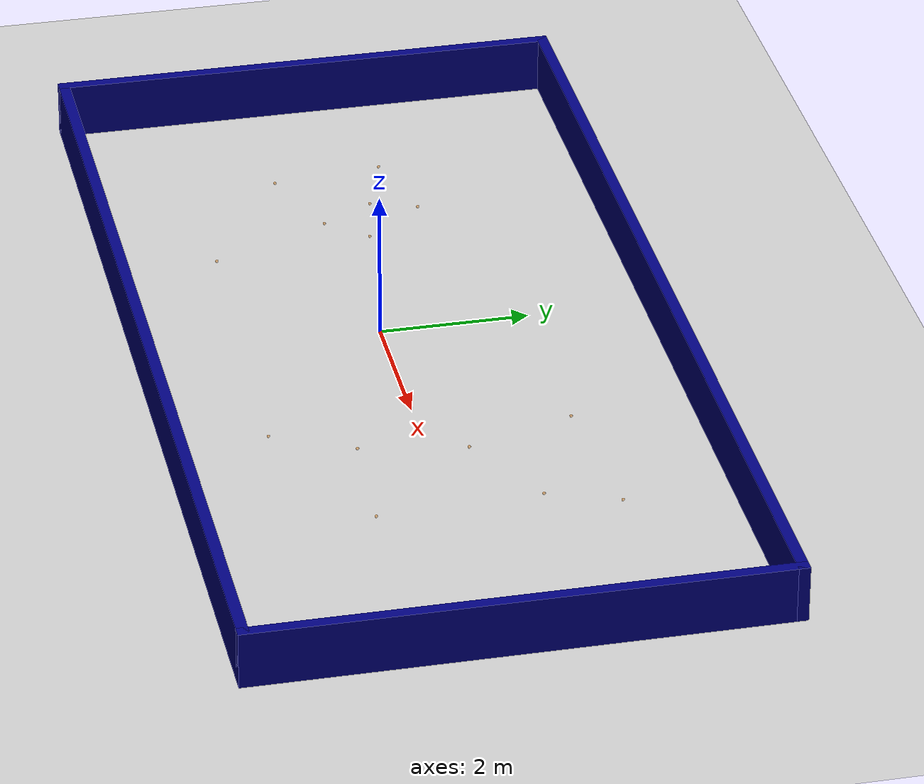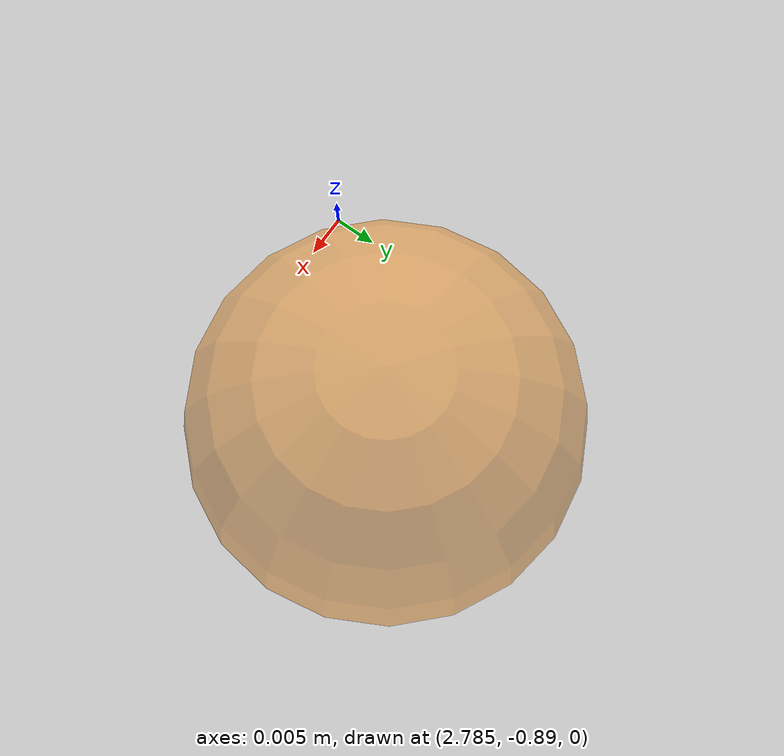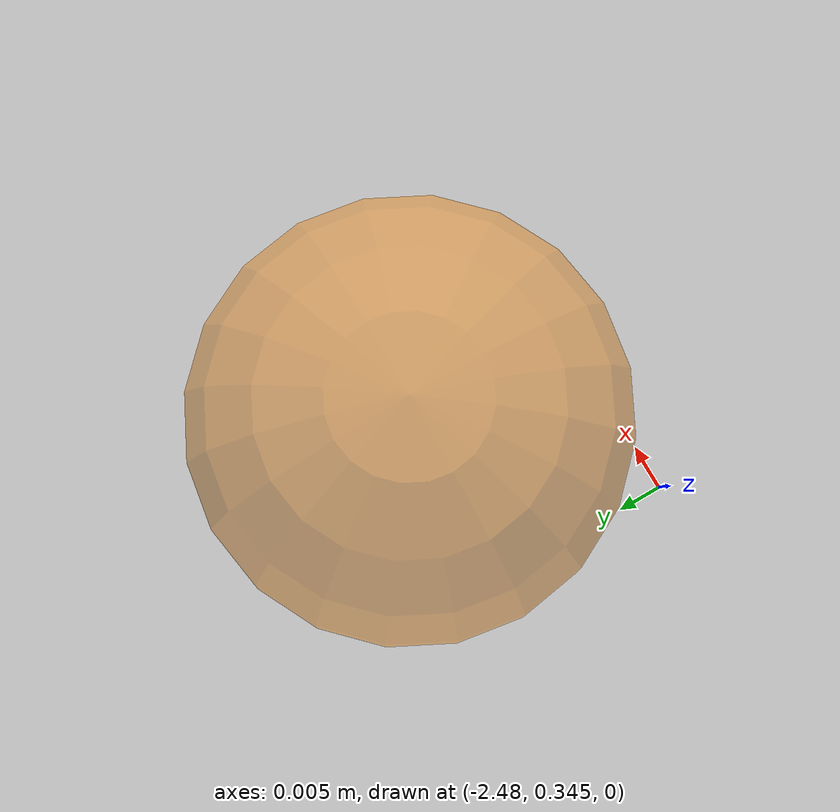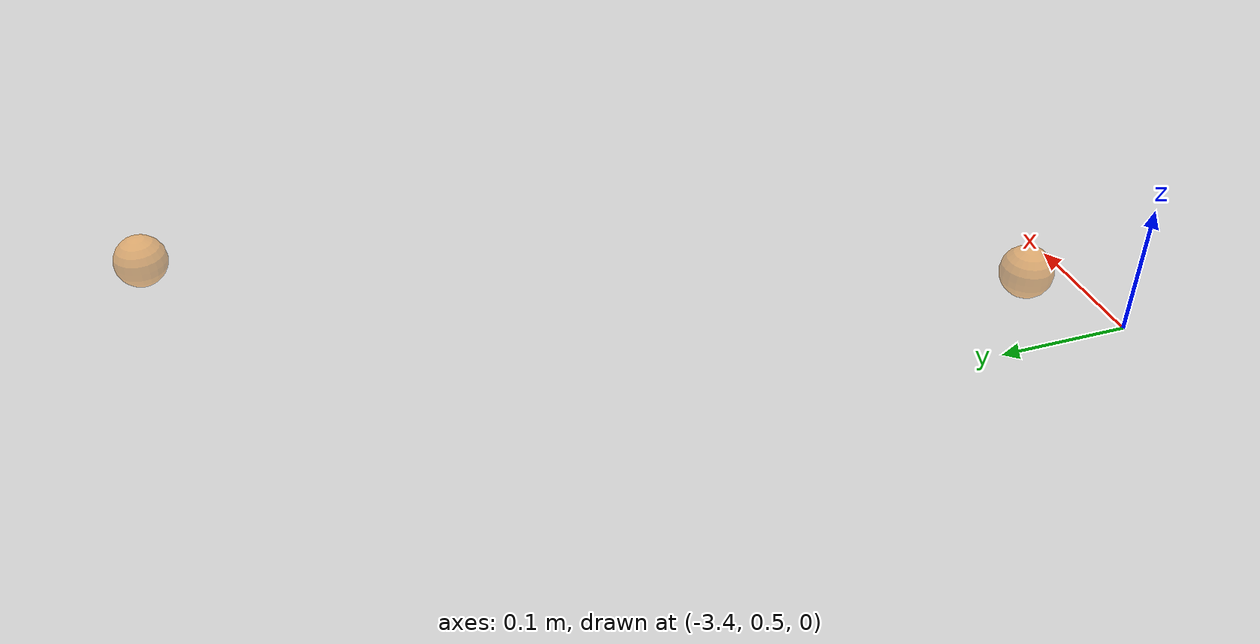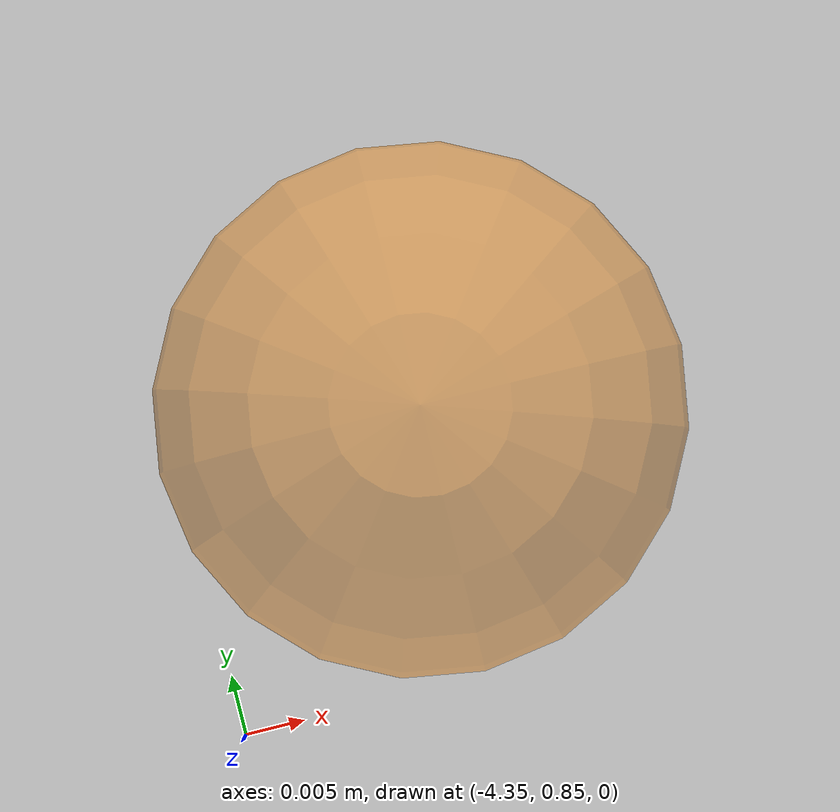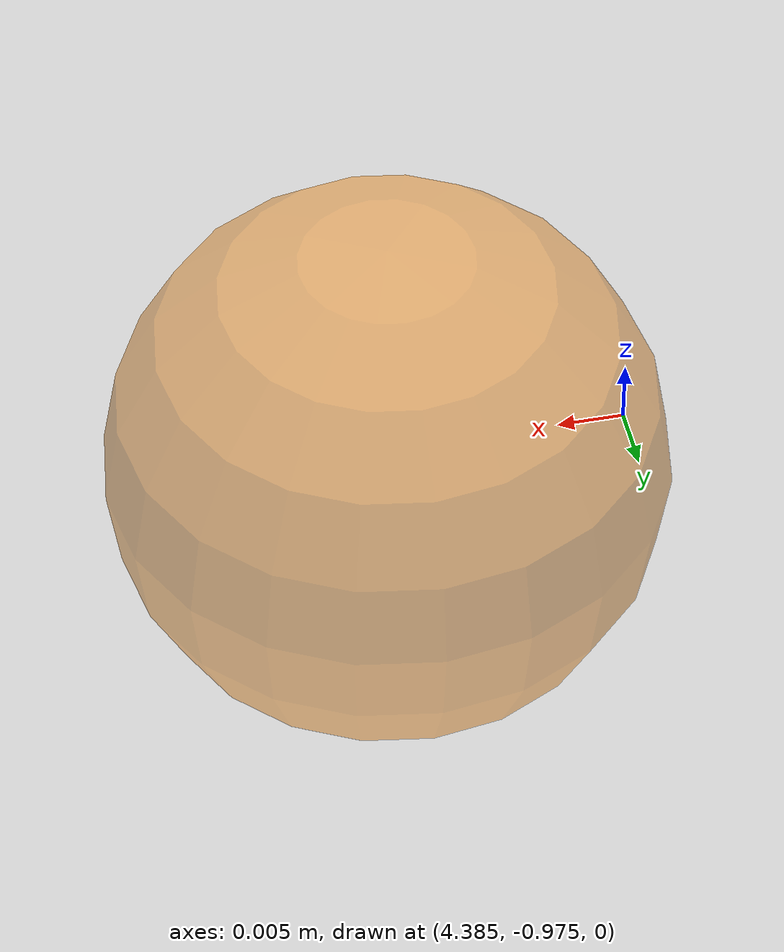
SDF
<sdf version="1.6">
 <world name="default">
  <light name="sun" type="directional">
   <pose>0 0 10 0 -0 0</pose>
   <diffuse>0.8 0.8 0.8 1</diffuse>
   <specular>0.1 0.1 0.1 1</specular>
   <attenuation>
    <range>1000</range>
    <constant>0.9</constant>
    <linear>0.01</linear>
    <quadratic>0.001</quadratic>
   </attenuation>
   <direction>-0.5 0.5 -1</direction>
  </light>
  <model name="ground_plane">
   <static>1</static>
   <link name="link">
    <collision name="collision">
     <geometry><plane><normal>0 0 1</normal><size>100 100</size></plane></geometry>
     <surface><friction><ode><mu>100</mu><mu2>50</mu2></ode></friction></surface>
    </collision>
    <visual name="visual">
     <cast_shadows>0</cast_shadows>
     <geometry><plane><normal>0 0 1</normal><size>100 100</size></plane></geometry>
     <material>
      <script><uri>file://media/materials/scripts/gazebo.material</uri><name>Gazebo/Grey</name></script>
     </material>
    </visual>
   </link>
  </model>
  <gravity>0 0 -9.8</gravity>
  <magnetic_field>6e-06 2.3e-05 -4.2e-05</magnetic_field>
  <atmosphere type="adiabatic"/>
  <physics name="default_physics" default="0" type="ode">
   <max_step_size>0.001</max_step_size>
   <real_time_factor>1</real_time_factor>
   <real_time_update_rate>1000</real_time_update_rate>
  </physics>
  <scene><ambient>0.4 0.4 0.4 1</ambient><background>0.7 0.7 0.7 1</background><shadows>1</shadows></scene>
  <spherical_coordinates>
   <surface_model>EARTH_WGS84</surface_model>
   <latitude_deg>0</latitude_deg>
   <longitude_deg>0</longitude_deg>
   <elevation>0</elevation>
   <heading_deg>0</heading_deg>
  </spherical_coordinates>
  <model name="table_tennis_room_2">
   <pose>0.71764 0.20188 0 0 -0 0</pose>
   <link name="Wall_3">
    <collision name="Wall_3_Collision">
     <geometry><box><size>14 0.15 0.76</size></box></geometry>
     <pose>0 0 0.38 0 -0 0</pose>
    </collision>
    <visual name="Wall_3_Visual">
     <pose>0 0 0.38 0 -0 0</pose>
     <geometry><box><size>14 0.15 0.76</size></box></geometry>
     <material>
      <script><uri>file://media/materials/scripts/gazebo.material</uri><name>Gazebo/Grey</name></script>
      <ambient>0 0 0.498039 1</ambient>
     </material>
    </visual>
    <pose>0 -3.425 0 0 -0 0</pose>
   </link>
   <link name="Wall_4">
    <collision name="Wall_4_Collision">
     <geometry><box><size>7 0.15 0.76</size></box></geometry>
     <pose>0 0 0.38 0 -0 0</pose>
    </collision>
    <visual name="Wall_4_Visual">
     <pose>0 0 0.38 0 -0 0</pose>
     <geometry><box><size>7 0.15 0.76</size></box></geometry>
     <material>
      <script><uri>file://media/materials/scripts/gazebo.material</uri><name>Gazebo/Grey</name></script>
      <ambient>0 0 0.498039 1</ambient>
     </material>
    </visual>
    <pose>6.925 0 0 0 -0 1.5708</pose>
   </link>
   <link name="Wall_5">
    <collision name="Wall_5_Collision">
     <geometry><box><size>14 0.15 0.76</size></box></geometry>
     <pose>0 0 0.38 0 -0 0</pose>
    </collision>
    <visual name="Wall_5_Visual">
     <pose>0 0 0.38 0 -0 0</pose>
     <geometry><box><size>14 0.15 0.76</size></box></geometry>
     <material>
      <script><uri>file://media/materials/scripts/gazebo.material</uri><name>Gazebo/Grey</name></script>
      <ambient>0 0 0.498039 1</ambient>
     </material>
    </visual>
    <pose>0 3.425 0 0 -0 3.14159</pose>
   </link>
   <link name="Wall_6">
    <collision name="Wall_6_Collision">
     <geometry><box><size>7 0.15 0.76</size></box></geometry>
     <pose>0 0 0.38 0 -0 0</pose>
    </collision>
    <visual name="Wall_6_Visual">
     <pose>0 0 0.38 0 -0 0</pose>
     <geometry><box><size>7 0.15 0.76</size></box></geometry>
     <material>
      <script><uri>file://media/materials/scripts/gazebo.material</uri><name>Gazebo/Grey</name></script>
      <ambient>0 0 0.498039 1</ambient>
     </material>
    </visual>
    <pose>-6.925 0 0 0 0 -1.5708</pose>
   </link>
   <static>1</static>
  </model>
  <model name="table_tennis">
   <link name="link">
    <inertial>
     <mass>0.0027</mass>
     <inertia><ixx>0.1</ixx><ixy>0</ixy><ixz>0</ixz><iyy>0.1</iyy><iyz>0</iyz><izz>0.1</izz></inertia>
    </inertial>
    <visual name="visual">
     <geometry><sphere><radius>0.02</radius></sphere></geometry>
     <material>
      <script>
       <name>Gazebo/OrangeTransparent</name>
       <uri>file://media/materials/scripts/gazebo.material</uri>
      </script>
      <ambient>1 0.44 0 1</ambient>
      <diffuse>1 0.44 0 1</diffuse>
      <specular>0 0 0 1</specular>
      <emissive>0 0 0 1</emissive>
      <shader type="vertex"><normal_map>__default__</normal_map></shader>
     </material>
     <transparency>0.22</transparency>
    </visual>
    <collision name="collision">
     <geometry><sphere><radius>0.02</radius></sphere></geometry>
     <surface>
      <friction>
       <ode><mu>1</mu><mu2>1</mu2><fdir1>0 0 0</fdir1><slip1>0</slip1><slip2>0</slip2></ode>
       <torsional>
        <coefficient>1</coefficient>
        <patch_radius>0</patch_radius>
        <surface_radius>0</surface_radius>
        <use_patch_radius>1</use_patch_radius>
        <ode><slip>0</slip></ode>
       </torsional>
      </friction>
      <bounce><restitution_coefficient>0</restitution_coefficient><threshold>1e+06</threshold></bounce>
      <contact>
       <collide_without_contact>0</collide_without_contact>
       <collide_without_contact_bitmask>1</collide_without_contact_bitmask>
       <collide_bitmask>1</collide_bitmask>
       <ode>
        <soft_cfm>0</soft_cfm>
        <soft_erp>0.2</soft_erp>
        <kp>1e+13</kp>
        <kd>1</kd>
        <max_vel>0.01</max_vel>
        <min_depth>0</min_depth>
       </ode>
       <bullet>
        <split_impulse>1</split_impulse>
        <split_impulse_penetration_threshold>-0.01</split_impulse_penetration_threshold>
        <soft_cfm>0</soft_cfm>
        <soft_erp>0.2</soft_erp>
        <kp>1e+13</kp>
        <kd>1</kd>
       </bullet>
      </contact>
     </surface>
    </collision>
   </link>
   <static>0</static>
   <pose>-2.95954 -0.163296 0.004 0 -0 0</pose>
  </model>
  <model name="table_tennis_0">
   <link name="link">
    <inertial>
     <mass>0.0027</mass>
     <inertia><ixx>0.1</ixx><ixy>0</ixy><ixz>0</ixz><iyy>0.1</iyy><iyz>0</iyz><izz>0.1</izz></inertia>
    </inertial>
    <visual name="visual">
     <geometry><sphere><radius>0.02</radius></sphere></geometry>
     <material>
      <script>
       <name>Gazebo/OrangeTransparent</name>
       <uri>file://media/materials/scripts/gazebo.material</uri>
      </script>
      <ambient>1 0.44 0 1</ambient>
      <diffuse>1 0.44 0 1</diffuse>
      <specular>0 0 0 1</specular>
      <emissive>0 0 0 1</emissive>
      <shader type="vertex"><normal_map>__default__</normal_map></shader>
     </material>
     <transparency>0.22</transparency>
    </visual>
    <collision name="collision">
     <geometry><sphere><radius>0.02</radius></sphere></geometry>
     <surface>
      <friction>
       <ode><mu>1</mu><mu2>1</mu2><fdir1>0 0 0</fdir1><slip1>0</slip1><slip2>0</slip2></ode>
       <torsional>
        <coefficient>1</coefficient>
        <patch_radius>0</patch_radius>
        <surface_radius>0</surface_radius>
        <use_patch_radius>1</use_patch_radius>
        <ode><slip>0</slip></ode>
       </torsional>
      </friction>
      <bounce><restitution_coefficient>0</restitution_coefficient><threshold>1e+06</threshold></bounce>
      <contact>
       <collide_without_contact>0</collide_without_contact>
       <collide_without_contact_bitmask>1</collide_without_contact_bitmask>
       <collide_bitmask>1</collide_bitmask>
       <ode>
        <soft_cfm>0</soft_cfm>
        <soft_erp>0.2</soft_erp>
        <kp>1e+13</kp>
        <kd>1</kd>
        <max_vel>0.01</max_vel>
        <min_depth>0</min_depth>
       </ode>
       <bullet>
        <split_impulse>1</split_impulse>
        <split_impulse_penetration_threshold>-0.01</split_impulse_penetration_threshold>
        <soft_cfm>0</soft_cfm>
        <soft_erp>0.2</soft_erp>
        <kp>1e+13</kp>
        <kd>1</kd>
       </bullet>
      </contact>
     </surface>
    </collision>
   </link>
   <static>0</static>
   <pose>-4.32968 0.872251 0.02 0 -0 0</pose>
  </model>
  <model name="table_tennis_1">
   <link name="link">
    <inertial>
     <mass>0.0027</mass>
     <inertia><ixx>0.1</ixx><ixy>0</ixy><ixz>0</ixz><iyy>0.1</iyy><iyz>0</iyz><izz>0.1</izz></inertia>
    </inertial>
    <visual name="visual">
     <geometry><sphere><radius>0.02</radius></sphere></geometry>
     <material>
      <script>
       <name>Gazebo/OrangeTransparent</name>
       <uri>file://media/materials/scripts/gazebo.material</uri>
      </script>
      <ambient>1 0.44 0 1</ambient>
      <diffuse>1 0.44 0 1</diffuse>
      <specular>0 0 0 1</specular>
      <emissive>0 0 0 1</emissive>
      <shader type="vertex"><normal_map>__default__</normal_map></shader>
     </material>
     <transparency>0.22</transparency>
    </visual>
    <collision name="collision">
     <geometry><sphere><radius>0.02</radius></sphere></geometry>
     <surface>
      <friction>
       <ode><mu>1</mu><mu2>1</mu2><fdir1>0 0 0</fdir1><slip1>0</slip1><slip2>0</slip2></ode>
       <torsional>
        <coefficient>1</coefficient>
        <patch_radius>0</patch_radius>
        <surface_radius>0</surface_radius>
        <use_patch_radius>1</use_patch_radius>
        <ode><slip>0</slip></ode>
       </torsional>
      </friction>
      <bounce><restitution_coefficient>0</restitution_coefficient><threshold>1e+06</threshold></bounce>
      <contact>
       <collide_without_contact>0</collide_without_contact>
       <collide_without_contact_bitmask>1</collide_without_contact_bitmask>
       <collide_bitmask>1</collide_bitmask>
       <ode>
        <soft_cfm>0</soft_cfm>
        <soft_erp>0.2</soft_erp>
        <kp>1e+13</kp>
        <kd>1</kd>
        <max_vel>0.01</max_vel>
        <min_depth>0</min_depth>
       </ode>
       <bullet>
        <split_impulse>1</split_impulse>
        <split_impulse_penetration_threshold>-0.01</split_impulse_penetration_threshold>
        <soft_cfm>0</soft_cfm>
        <soft_erp>0.2</soft_erp>
        <kp>1e+13</kp>
        <kd>1</kd>
       </bullet>
      </contact>
     </surface>
    </collision>
   </link>
   <static>0</static>
   <pose>-3.34024 0.546321 0.02 0 -0 0</pose>
  </model>
  <model name="table_tennis_2">
   <link name="link">
    <inertial>
     <mass>0.0027</mass>
     <inertia><ixx>0.1</ixx><ixy>0</ixy><ixz>0</ixz><iyy>0.1</iyy><iyz>0</iyz><izz>0.1</izz></inertia>
    </inertial>
    <visual name="visual">
     <geometry><sphere><radius>0.02</radius></sphere></geometry>
     <material>
      <script>
       <name>Gazebo/OrangeTransparent</name>
       <uri>file://media/materials/scripts/gazebo.material</uri>
      </script>
      <ambient>1 0.44 0 1</ambient>
      <diffuse>1 0.44 0 1</diffuse>
      <specular>0 0 0 1</specular>
      <emissive>0 0 0 1</emissive>
      <shader type="vertex"><normal_map>__default__</normal_map></shader>
     </material>
     <transparency>0.22</transparency>
    </visual>
    <collision name="collision">
     <geometry><sphere><radius>0.02</radius></sphere></geometry>
     <surface>
      <friction>
       <ode><mu>1</mu><mu2>1</mu2><fdir1>0 0 0</fdir1><slip1>0</slip1><slip2>0</slip2></ode>
       <torsional>
        <coefficient>1</coefficient>
        <patch_radius>0</patch_radius>
        <surface_radius>0</surface_radius>
        <use_patch_radius>1</use_patch_radius>
        <ode><slip>0</slip></ode>
       </torsional>
      </friction>
      <bounce><restitution_coefficient>0</restitution_coefficient><threshold>1e+06</threshold></bounce>
      <contact>
       <collide_without_contact>0</collide_without_contact>
       <collide_without_contact_bitmask>1</collide_without_contact_bitmask>
       <collide_bitmask>1</collide_bitmask>
       <ode>
        <soft_cfm>0</soft_cfm>
        <soft_erp>0.2</soft_erp>
        <kp>1e+13</kp>
        <kd>1</kd>
        <max_vel>0.01</max_vel>
        <min_depth>0</min_depth>
       </ode>
       <bullet>
        <split_impulse>1</split_impulse>
        <split_impulse_penetration_threshold>-0.01</split_impulse_penetration_threshold>
        <soft_cfm>0</soft_cfm>
        <soft_erp>0.2</soft_erp>
        <kp>1e+13</kp>
        <kd>1</kd>
       </bullet>
      </contact>
     </surface>
    </collision>
   </link>
   <static>0</static>
   <pose>-4.16554 -0.61973 0.02 -5e-06 -1e-06 0</pose>
  </model>
  <model name="table_tennis_3">
   <link name="link">
    <inertial>
     <mass>0.0027</mass>
     <inertia><ixx>0.1</ixx><ixy>0</ixy><ixz>0</ixz><iyy>0.1</iyy><iyz>0</iyz><izz>0.1</izz></inertia>
    </inertial>
    <visual name="visual">
     <geometry><sphere><radius>0.02</radius></sphere></geometry>
     <material>
      <script>
       <name>Gazebo/OrangeTransparent</name>
       <uri>file://media/materials/scripts/gazebo.material</uri>
      </script>
      <ambient>1 0.44 0 1</ambient>
      <diffuse>1 0.44 0 1</diffuse>
      <specular>0 0 0 1</specular>
      <emissive>0 0 0 1</emissive>
      <shader type="vertex"><normal_map>__default__</normal_map></shader>
     </material>
     <transparency>0.22</transparency>
    </visual>
    <collision name="collision">
     <geometry><sphere><radius>0.02</radius></sphere></geometry>
     <surface>
      <friction>
       <ode><mu>1</mu><mu2>1</mu2><fdir1>0 0 0</fdir1><slip1>0</slip1><slip2>0</slip2></ode>
       <torsional>
        <coefficient>1</coefficient>
        <patch_radius>0</patch_radius>
        <surface_radius>0</surface_radius>
        <use_patch_radius>1</use_patch_radius>
        <ode><slip>0</slip></ode>
       </torsional>
      </friction>
      <bounce><restitution_coefficient>0</restitution_coefficient><threshold>1e+06</threshold></bounce>
      <contact>
       <collide_without_contact>0</collide_without_contact>
       <collide_without_contact_bitmask>1</collide_without_contact_bitmask>
       <collide_bitmask>1</collide_bitmask>
       <ode>
        <soft_cfm>0</soft_cfm>
        <soft_erp>0.2</soft_erp>
        <kp>1e+13</kp>
        <kd>1</kd>
        <max_vel>0.01</max_vel>
        <min_depth>0</min_depth>
       </ode>
       <bullet>
        <split_impulse>1</split_impulse>
        <split_impulse_penetration_threshold>-0.01</split_impulse_penetration_threshold>
        <soft_cfm>0</soft_cfm>
        <soft_erp>0.2</soft_erp>
        <kp>1e+13</kp>
        <kd>1</kd>
       </bullet>
      </contact>
     </surface>
    </collision>
   </link>
   <static>0</static>
   <pose>-2.21963 -1.78059 0.02 0 -0 0</pose>
  </model>
  <model name="table_tennis_4">
   <link name="link">
    <inertial>
     <mass>0.0027</mass>
     <inertia><ixx>0.1</ixx><ixy>0</ixy><ixz>0</ixz><iyy>0.1</iyy><iyz>0</iyz><izz>0.1</izz></inertia>
    </inertial>
    <visual name="visual">
     <geometry><sphere><radius>0.02</radius></sphere></geometry>
     <material>
      <script>
       <name>Gazebo/OrangeTransparent</name>
       <uri>file://media/materials/scripts/gazebo.material</uri>
      </script>
      <ambient>1 0.44 0 1</ambient>
      <diffuse>1 0.44 0 1</diffuse>
      <specular>0 0 0 1</specular>
      <emissive>0 0 0 1</emissive>
      <shader type="vertex"><normal_map>__default__</normal_map></shader>
     </material>
     <transparency>0.22</transparency>
    </visual>
    <collision name="collision">
     <geometry><sphere><radius>0.02</radius></sphere></geometry>
     <surface>
      <friction>
       <ode><mu>1</mu><mu2>1</mu2><fdir1>0 0 0</fdir1><slip1>0</slip1><slip2>0</slip2></ode>
       <torsional>
        <coefficient>1</coefficient>
        <patch_radius>0</patch_radius>
        <surface_radius>0</surface_radius>
        <use_patch_radius>1</use_patch_radius>
        <ode><slip>0</slip></ode>
       </torsional>
      </friction>
      <bounce><restitution_coefficient>0</restitution_coefficient><threshold>1e+06</threshold></bounce>
      <contact>
       <collide_without_contact>0</collide_without_contact>
       <collide_without_contact_bitmask>1</collide_without_contact_bitmask>
       <collide_bitmask>1</collide_bitmask>
       <ode>
        <soft_cfm>0</soft_cfm>
        <soft_erp>0.2</soft_erp>
        <kp>1e+13</kp>
        <kd>1</kd>
        <max_vel>0.01</max_vel>
        <min_depth>0</min_depth>
       </ode>
       <bullet>
        <split_impulse>1</split_impulse>
        <split_impulse_penetration_threshold>-0.01</split_impulse_penetration_threshold>
        <soft_cfm>0</soft_cfm>
        <soft_erp>0.2</soft_erp>
        <kp>1e+13</kp>
        <kd>1</kd>
       </bullet>
      </contact>
     </surface>
    </collision>
   </link>
   <static>0</static>
   <pose>-3.12084 1.17118 0.02 0 -0 0</pose>
  </model>
  <model name="table_tennis_5">
   <link name="link">
    <inertial>
     <mass>0.0027</mass>
     <inertia><ixx>0.1</ixx><ixy>0</ixy><ixz>0</ixz><iyy>0.1</iyy><iyz>0</iyz><izz>0.1</izz></inertia>
    </inertial>
    <visual name="visual">
     <geometry><sphere><radius>0.02</radius></sphere></geometry>
     <material>
      <script>
       <name>Gazebo/OrangeTransparent</name>
       <uri>file://media/materials/scripts/gazebo.material</uri>
      </script>
      <ambient>1 0.44 0 1</ambient>
      <diffuse>1 0.44 0 1</diffuse>
      <specular>0 0 0 1</specular>
      <emissive>0 0 0 1</emissive>
      <shader type="vertex"><normal_map>__default__</normal_map></shader>
     </material>
     <transparency>0.22</transparency>
    </visual>
    <collision name="collision">
     <geometry><sphere><radius>0.02</radius></sphere></geometry>
     <surface>
      <friction>
       <ode><mu>1</mu><mu2>1</mu2><fdir1>0 0 0</fdir1><slip1>0</slip1><slip2>0</slip2></ode>
       <torsional>
        <coefficient>1</coefficient>
        <patch_radius>0</patch_radius>
        <surface_radius>0</surface_radius>
        <use_patch_radius>1</use_patch_radius>
        <ode><slip>0</slip></ode>
       </torsional>
      </friction>
      <bounce><restitution_coefficient>0</restitution_coefficient><threshold>1e+06</threshold></bounce>
      <contact>
       <collide_without_contact>0</collide_without_contact>
       <collide_without_contact_bitmask>1</collide_without_contact_bitmask>
       <collide_bitmask>1</collide_bitmask>
       <ode>
        <soft_cfm>0</soft_cfm>
        <soft_erp>0.2</soft_erp>
        <kp>1e+13</kp>
        <kd>1</kd>
        <max_vel>0.01</max_vel>
        <min_depth>0</min_depth>
       </ode>
       <bullet>
        <split_impulse>1</split_impulse>
        <split_impulse_penetration_threshold>-0.01</split_impulse_penetration_threshold>
        <soft_cfm>0</soft_cfm>
        <soft_erp>0.2</soft_erp>
        <kp>1e+13</kp>
        <kd>1</kd>
       </bullet>
      </contact>
     </surface>
    </collision>
   </link>
   <static>0</static>
   <pose>-2.46176 0.366007 0.02 0 -0 0</pose>
  </model>
  <model name="table_tennis_6">
   <link name="link">
    <inertial>
     <mass>0.0027</mass>
     <inertia><ixx>0.1</ixx><ixy>0</ixy><ixz>0</ixz><iyy>0.1</iyy><iyz>0</iyz><izz>0.1</izz></inertia>
    </inertial>
    <visual name="visual">
     <geometry><sphere><radius>0.02</radius></sphere></geometry>
     <material>
      <script>
       <name>Gazebo/OrangeTransparent</name>
       <uri>file://media/materials/scripts/gazebo.material</uri>
      </script>
      <ambient>1 0.44 0 1</ambient>
      <diffuse>1 0.44 0 1</diffuse>
      <specular>0 0 0 1</specular>
      <emissive>0 0 0 1</emissive>
      <shader type="vertex"><normal_map>__default__</normal_map></shader>
     </material>
     <transparency>0.22</transparency>
    </visual>
    <collision name="collision">
     <geometry><sphere><radius>0.02</radius></sphere></geometry>
     <surface>
      <friction>
       <ode><mu>1</mu><mu2>1</mu2><fdir1>0 0 0</fdir1><slip1>0</slip1><slip2>0</slip2></ode>
       <torsional>
        <coefficient>1</coefficient>
        <patch_radius>0</patch_radius>
        <surface_radius>0</surface_radius>
        <use_patch_radius>1</use_patch_radius>
        <ode><slip>0</slip></ode>
       </torsional>
      </friction>
      <bounce><restitution_coefficient>0</restitution_coefficient><threshold>1e+06</threshold></bounce>
      <contact>
       <collide_without_contact>0</collide_without_contact>
       <collide_without_contact_bitmask>1</collide_without_contact_bitmask>
       <collide_bitmask>1</collide_bitmask>
       <ode>
        <soft_cfm>0</soft_cfm>
        <soft_erp>0.2</soft_erp>
        <kp>1e+13</kp>
        <kd>1</kd>
        <max_vel>0.01</max_vel>
        <min_depth>0</min_depth>
       </ode>
       <bullet>
        <split_impulse>1</split_impulse>
        <split_impulse_penetration_threshold>-0.01</split_impulse_penetration_threshold>
        <soft_cfm>0</soft_cfm>
        <soft_erp>0.2</soft_erp>
        <kp>1e+13</kp>
        <kd>1</kd>
       </bullet>
      </contact>
     </surface>
    </collision>
   </link>
   <static>0</static>
   <pose>2.8061 -0.868332 0.02 0 -0 0</pose>
  </model>
  <model name="table_tennis_7">
   <link name="link">
    <inertial>
     <mass>0.0027</mass>
     <inertia><ixx>0.1</ixx><ixy>0</ixy><ixz>0</ixz><iyy>0.1</iyy><iyz>0</iyz><izz>0.1</izz></inertia>
    </inertial>
    <visual name="visual">
     <geometry><sphere><radius>0.02</radius></sphere></geometry>
     <material>
      <script>
       <name>Gazebo/OrangeTransparent</name>
       <uri>file://media/materials/scripts/gazebo.material</uri>
      </script>
      <ambient>1 0.44 0 1</ambient>
      <diffuse>1 0.44 0 1</diffuse>
      <specular>0 0 0 1</specular>
      <emissive>0 0 0 1</emissive>
      <shader type="vertex"><normal_map>__default__</normal_map></shader>
     </material>
     <transparency>0.22</transparency>
    </visual>
    <collision name="collision">
     <geometry><sphere><radius>0.02</radius></sphere></geometry>
     <surface>
      <friction>
       <ode><mu>1</mu><mu2>1</mu2><fdir1>0 0 0</fdir1><slip1>0</slip1><slip2>0</slip2></ode>
       <torsional>
        <coefficient>1</coefficient>
        <patch_radius>0</patch_radius>
        <surface_radius>0</surface_radius>
        <use_patch_radius>1</use_patch_radius>
        <ode><slip>0</slip></ode>
       </torsional>
      </friction>
      <bounce><restitution_coefficient>0</restitution_coefficient><threshold>1e+06</threshold></bounce>
      <contact>
       <collide_without_contact>0</collide_without_contact>
       <collide_without_contact_bitmask>1</collide_without_contact_bitmask>
       <collide_bitmask>1</collide_bitmask>
       <ode>
        <soft_cfm>0</soft_cfm>
        <soft_erp>0.2</soft_erp>
        <kp>1e+13</kp>
        <kd>1</kd>
        <max_vel>0.01</max_vel>
        <min_depth>0</min_depth>
       </ode>
       <bullet>
        <split_impulse>1</split_impulse>
        <split_impulse_penetration_threshold>-0.01</split_impulse_penetration_threshold>
        <soft_cfm>0</soft_cfm>
        <soft_erp>0.2</soft_erp>
        <kp>1e+13</kp>
        <kd>1</kd>
       </bullet>
      </contact>
     </surface>
    </collision>
   </link>
   <static>0</static>
   <pose>2.28577 -1.92107 0.02 0 -0 0</pose>
  </model>
  <model name="table_tennis_8">
   <link name="link">
    <inertial>
     <mass>0.0027</mass>
     <inertia><ixx>0.1</ixx><ixy>0</ixy><ixz>0</ixz><iyy>0.1</iyy><iyz>0</iyz><izz>0.1</izz></inertia>
    </inertial>
    <visual name="visual">
     <geometry><sphere><radius>0.02</radius></sphere></geometry>
     <material>
      <script>
       <name>Gazebo/OrangeTransparent</name>
       <uri>file://media/materials/scripts/gazebo.material</uri>
      </script>
      <ambient>1 0.44 0 1</ambient>
      <diffuse>1 0.44 0 1</diffuse>
      <specular>0 0 0 1</specular>
      <emissive>0 0 0 1</emissive>
      <shader type="vertex"><normal_map>__default__</normal_map></shader>
     </material>
     <transparency>0.22</transparency>
    </visual>
    <collision name="collision">
     <geometry><sphere><radius>0.02</radius></sphere></geometry>
     <surface>
      <friction>
       <ode><mu>1</mu><mu2>1</mu2><fdir1>0 0 0</fdir1><slip1>0</slip1><slip2>0</slip2></ode>
       <torsional>
        <coefficient>1</coefficient>
        <patch_radius>0</patch_radius>
        <surface_radius>0</surface_radius>
        <use_patch_radius>1</use_patch_radius>
        <ode><slip>0</slip></ode>
       </torsional>
      </friction>
      <bounce><restitution_coefficient>0</restitution_coefficient><threshold>1e+06</threshold></bounce>
      <contact>
       <collide_without_contact>0</collide_without_contact>
       <collide_without_contact_bitmask>1</collide_without_contact_bitmask>
       <collide_bitmask>1</collide_bitmask>
       <ode>
        <soft_cfm>0</soft_cfm>
        <soft_erp>0.2</soft_erp>
        <kp>1e+13</kp>
        <kd>1</kd>
        <max_vel>0.01</max_vel>
        <min_depth>0</min_depth>
       </ode>
       <bullet>
        <split_impulse>1</split_impulse>
        <split_impulse_penetration_threshold>-0.01</split_impulse_penetration_threshold>
        <soft_cfm>0</soft_cfm>
        <soft_erp>0.2</soft_erp>
        <kp>1e+13</kp>
        <kd>1</kd>
       </bullet>
      </contact>
     </surface>
    </collision>
   </link>
   <static>0</static>
   <pose>3.05775 0.533081 0.02 0 -0 0</pose>
  </model>
  <model name="table_tennis_9">
   <link name="link">
    <inertial>
     <mass>0.0027</mass>
     <inertia><ixx>0.1</ixx><ixy>0</ixy><ixz>0</ixz><iyy>0.1</iyy><iyz>0</iyz><izz>0.1</izz></inertia>
    </inertial>
    <visual name="visual">
     <geometry><sphere><radius>0.02</radius></sphere></geometry>
     <material>
      <script>
       <name>Gazebo/OrangeTransparent</name>
       <uri>file://media/materials/scripts/gazebo.material</uri>
      </script>
      <ambient>1 0.44 0 1</ambient>
      <diffuse>1 0.44 0 1</diffuse>
      <specular>0 0 0 1</specular>
      <emissive>0 0 0 1</emissive>
      <shader type="vertex"><normal_map>__default__</normal_map></shader>
     </material>
     <transparency>0.22</transparency>
    </visual>
    <collision name="collision">
     <geometry><sphere><radius>0.02</radius></sphere></geometry>
     <surface>
      <friction>
       <ode><mu>1</mu><mu2>1</mu2><fdir1>0 0 0</fdir1><slip1>0</slip1><slip2>0</slip2></ode>
       <torsional>
        <coefficient>1</coefficient>
        <patch_radius>0</patch_radius>
        <surface_radius>0</surface_radius>
        <use_patch_radius>1</use_patch_radius>
        <ode><slip>0</slip></ode>
       </torsional>
      </friction>
      <bounce><restitution_coefficient>0</restitution_coefficient><threshold>1e+06</threshold></bounce>
      <contact>
       <collide_without_contact>0</collide_without_contact>
       <collide_without_contact_bitmask>1</collide_without_contact_bitmask>
       <collide_bitmask>1</collide_bitmask>
       <ode>
        <soft_cfm>0</soft_cfm>
        <soft_erp>0.2</soft_erp>
        <kp>1e+13</kp>
        <kd>1</kd>
        <max_vel>0.01</max_vel>
        <min_depth>0</min_depth>
       </ode>
       <bullet>
        <split_impulse>1</split_impulse>
        <split_impulse_penetration_threshold>-0.01</split_impulse_penetration_threshold>
        <soft_cfm>0</soft_cfm>
        <soft_erp>0.2</soft_erp>
        <kp>1e+13</kp>
        <kd>1</kd>
       </bullet>
      </contact>
     </surface>
    </collision>
   </link>
   <static>0</static>
   <pose>2.59472 1.97051 0.02 0 -0 0</pose>
  </model>
  <model name="table_tennis_10">
   <link name="link">
    <inertial>
     <mass>0.0027</mass>
     <inertia><ixx>0.1</ixx><ixy>0</ixy><ixz>0</ixz><iyy>0.1</iyy><iyz>0</iyz><izz>0.1</izz></inertia>
    </inertial>
    <visual name="visual">
     <geometry><sphere><radius>0.02</radius></sphere></geometry>
     <material>
      <script>
       <name>Gazebo/OrangeTransparent</name>
       <uri>file://media/materials/scripts/gazebo.material</uri>
      </script>
      <ambient>1 0.44 0 1</ambient>
      <diffuse>1 0.44 0 1</diffuse>
      <specular>0 0 0 1</specular>
      <emissive>0 0 0 1</emissive>
      <shader type="vertex"><normal_map>__default__</normal_map></shader>
     </material>
     <transparency>0.22</transparency>
    </visual>
    <collision name="collision">
     <geometry><sphere><radius>0.02</radius></sphere></geometry>
     <surface>
      <friction>
       <ode><mu>1</mu><mu2>1</mu2><fdir1>0 0 0</fdir1><slip1>0</slip1><slip2>0</slip2></ode>
       <torsional>
        <coefficient>1</coefficient>
        <patch_radius>0</patch_radius>
        <surface_radius>0</surface_radius>
        <use_patch_radius>1</use_patch_radius>
        <ode><slip>0</slip></ode>
       </torsional>
      </friction>
      <bounce><restitution_coefficient>0</restitution_coefficient><threshold>1e+06</threshold></bounce>
      <contact>
       <collide_without_contact>0</collide_without_contact>
       <collide_without_contact_bitmask>1</collide_without_contact_bitmask>
       <collide_bitmask>1</collide_bitmask>
       <ode>
        <soft_cfm>0</soft_cfm>
        <soft_erp>0.2</soft_erp>
        <kp>1e+13</kp>
        <kd>1</kd>
        <max_vel>0.01</max_vel>
        <min_depth>0</min_depth>
       </ode>
       <bullet>
        <split_impulse>1</split_impulse>
        <split_impulse_penetration_threshold>-0.01</split_impulse_penetration_threshold>
        <soft_cfm>0</soft_cfm>
        <soft_erp>0.2</soft_erp>
        <kp>1e+13</kp>
        <kd>1</kd>
       </bullet>
      </contact>
     </surface>
    </collision>
   </link>
   <static>0</static>
   <pose>4.40709 -0.954895 0.02 0 -0 0</pose>
  </model>
  <model name="table_tennis_11">
   <link name="link">
    <inertial>
     <mass>0.0027</mass>
     <inertia><ixx>0.1</ixx><ixy>0</ixy><ixz>0</ixz><iyy>0.1</iyy><iyz>0</iyz><izz>0.1</izz></inertia>
    </inertial>
    <visual name="visual">
     <geometry><sphere><radius>0.02</radius></sphere></geometry>
     <material>
      <script>
       <name>Gazebo/OrangeTransparent</name>
       <uri>file://media/materials/scripts/gazebo.material</uri>
      </script>
      <ambient>1 0.44 0 1</ambient>
      <diffuse>1 0.44 0 1</diffuse>
      <specular>0 0 0 1</specular>
      <emissive>0 0 0 1</emissive>
      <shader type="vertex"><normal_map>__default__</normal_map></shader>
     </material>
     <transparency>0.22</transparency>
    </visual>
    <collision name="collision">
     <geometry><sphere><radius>0.02</radius></sphere></geometry>
     <surface>
      <friction>
       <ode><mu>1</mu><mu2>1</mu2><fdir1>0 0 0</fdir1><slip1>0</slip1><slip2>0</slip2></ode>
       <torsional>
        <coefficient>1</coefficient>
        <patch_radius>0</patch_radius>
        <surface_radius>0</surface_radius>
        <use_patch_radius>1</use_patch_radius>
        <ode><slip>0</slip></ode>
       </torsional>
      </friction>
      <bounce><restitution_coefficient>0</restitution_coefficient><threshold>1e+06</threshold></bounce>
      <contact>
       <collide_without_contact>0</collide_without_contact>
       <collide_without_contact_bitmask>1</collide_without_contact_bitmask>
       <collide_bitmask>1</collide_bitmask>
       <ode>
        <soft_cfm>0</soft_cfm>
        <soft_erp>0.2</soft_erp>
        <kp>1e+13</kp>
        <kd>1</kd>
        <max_vel>0.01</max_vel>
        <min_depth>0</min_depth>
       </ode>
       <bullet>
        <split_impulse>1</split_impulse>
        <split_impulse_penetration_threshold>-0.01</split_impulse_penetration_threshold>
        <soft_cfm>0</soft_cfm>
        <soft_erp>0.2</soft_erp>
        <kp>1e+13</kp>
        <kd>1</kd>
       </bullet>
      </contact>
     </surface>
    </collision>
   </link>
   <static>0</static>
   <pose>4.31509 1.21174 0.02 0 -0 0</pose>
  </model>
  <model name="table_tennis_12">
   <link name="link">
    <inertial>
     <mass>0.0027</mass>
     <inertia><ixx>0.1</ixx><ixy>0</ixy><ixz>0</ixz><iyy>0.1</iyy><iyz>0</iyz><izz>0.1</izz></inertia>
    </inertial>
    <visual name="visual">
     <geometry><sphere><radius>0.02</radius></sphere></geometry>
     <material>
      <script>
       <name>Gazebo/OrangeTransparent</name>
       <uri>file://media/materials/scripts/gazebo.material</uri>
      </script>
      <ambient>1 0.44 0 1</ambient>
      <diffuse>1 0.44 0 1</diffuse>
      <specular>0 0 0 1</specular>
      <emissive>0 0 0 1</emissive>
      <shader type="vertex"><normal_map>__default__</normal_map></shader>
     </material>
     <transparency>0.22</transparency>
    </visual>
    <collision name="collision">
     <geometry><sphere><radius>0.02</radius></sphere></geometry>
     <surface>
      <friction>
       <ode><mu>1</mu><mu2>1</mu2><fdir1>0 0 0</fdir1><slip1>0</slip1><slip2>0</slip2></ode>
       <torsional>
        <coefficient>1</coefficient>
        <patch_radius>0</patch_radius>
        <surface_radius>0</surface_radius>
        <use_patch_radius>1</use_patch_radius>
        <ode><slip>0</slip></ode>
       </torsional>
      </friction>
      <bounce><restitution_coefficient>0</restitution_coefficient><threshold>1e+06</threshold></bounce>
      <contact>
       <collide_without_contact>0</collide_without_contact>
       <collide_without_contact_bitmask>1</collide_without_contact_bitmask>
       <collide_bitmask>1</collide_bitmask>
       <ode>
        <soft_cfm>0</soft_cfm>
        <soft_erp>0.2</soft_erp>
        <kp>1e+13</kp>
        <kd>1</kd>
        <max_vel>0.01</max_vel>
        <min_depth>0</min_depth>
       </ode>
       <bullet>
        <split_impulse>1</split_impulse>
        <split_impulse_penetration_threshold>-0.01</split_impulse_penetration_threshold>
        <soft_cfm>0</soft_cfm>
        <soft_erp>0.2</soft_erp>
        <kp>1e+13</kp>
        <kd>1</kd>
       </bullet>
      </contact>
     </surface>
    </collision>
   </link>
   <static>0</static>
   <pose>4.66282 2.14576 0.02 0 -0 0</pose>
  </model>
 </world>
</sdf>
